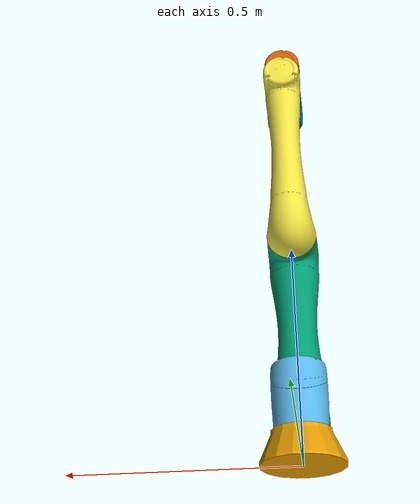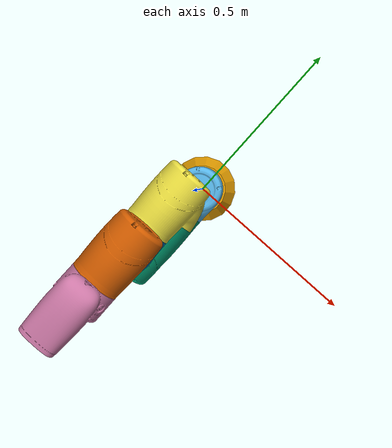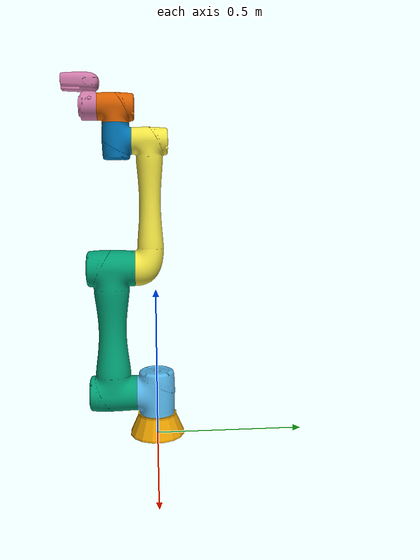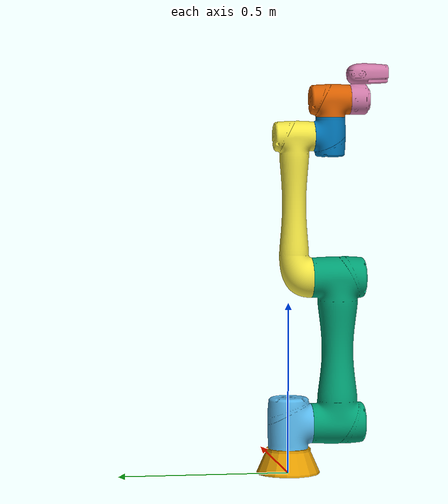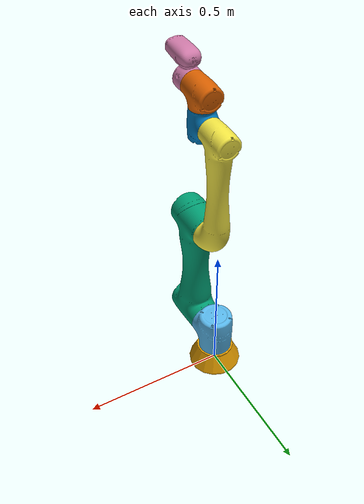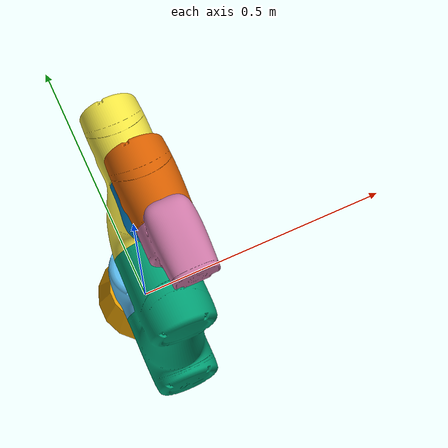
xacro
<?xml version="1.0"?>
<robot xmlns:xacro="http://wiki.ros.org/xacro" name="tm5-900">

  <xacro:arg name="ns" default="" />
  <xacro:arg name="prefix" default="" />

  <xacro:arg name="gripper" default="none" />

  <xacro:arg name="color" default="none" />

  <xacro:arg name="trans_hw_iface" default="hardware_interface/PositionJointInterface" />

  <xacro:include filename="$(find tmr_description)/xacro/macro.gazebo.xacro" />
  <xacro:include filename="$(find tmr_description)/xacro/macro.transmission.xacro" />
  <xacro:include filename="$(find tmr_description)/xacro/macro.materials.xacro" />

  <!-- tm5-900 -->
  <xacro:include filename="$(find tmr_description)/xacro/macro.tm5-900.urdf.xacro" />

  <xacro:tmr_gazebo ns="$(arg ns)" prefix="$(arg prefix)" />
  <xacro:tmr_transmission prefix="$(arg prefix)" hw_iface="$(arg trans_hw_iface)" />
  <xacro:tmr_materials/>

  <!-- Arm -->
  <xacro:property name="color" value="$(arg color)"/>
  <xacro:if value="${color == 'none'}">
    <xacro:tm5-900 ns="$(arg ns)" prefix="$(arg prefix)" />
  </xacro:if>
  <!-- Arm.color.stl -->
  <xacro:unless value="${color == 'none'}">
    <xacro:tm5-900 ns="$(arg ns)" prefix="$(arg prefix)" color="${color}" format="stl" />
  </xacro:unless>

  <!-- Arm + Gripper -->
  <xacro:property name="gripper" value="$(arg gripper)"/>
  <xacro:if value="${gripper == 'robotiq_2f'}">
    <xacro:include filename="$(find tmr_description)/xacro/gripper/robotiq_2f.urdf.xacro" />
    <xacro:robotiq_2f prefix="$(arg prefix)"/>
  </xacro:if>

</robot>

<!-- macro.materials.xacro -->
<robot xmlns:xacro="http://www.ros.org/wiki/xacro">
	<xacro:macro name="tmr_materials">
    <material name="grey">
			<color rgba="0.5 0.5 0.5 1.0" />
		</material>
		<material name="white">
			<color rgba="0.95 0.95 0.95 1.0" />
		</material>
		<material name="red">
			<color rgba="0.95 0.0 0.0 1.0" />
		</material>
		<material name="orange">
			<color rgba="1.0 0.5 0.0 1.0" />
		</material>
		<material name="yellow">
			<color rgba="1.0 1.0 0.0 1.0" />
		</material>
		<material name="green">
			<color rgba="0.0 1.0 0.0 1.0" />
		</material>
		<material name="blue">
			<color rgba="0.0 0.0 1.0 1.0" />
		</material>
		<material name="indigo">
			<color rgba="0.3 0.3 0.6 1.0" />
		</material>
		<material name="violet">
			<color rgba="0.6 0.0 1.0 1.0" />
		</material>
		<material name="black">
			<color rgba="0.0 0.0 0.0 1.0" />
		</material>
	</xacro:macro>
</robot>

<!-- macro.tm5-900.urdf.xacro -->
<robot xmlns:xacro="http://wiki.ros.org/xacro">

  <xacro:include filename="$(find tmr_description)/xacro/macro.inertial.xacro" />

  <xacro:macro name="tm5-900" params="ns prefix
    color:=none format:=obj">
    <xacro:property name="mass_0" value="1.0" />
    <xacro:property name="mass_1" value="4.5" />
    <xacro:property name="mass_2" value="11.0" />
    <xacro:property name="mass_3" value="2.5" />
    <xacro:property name="mass_4" value="1.45" />
    <xacro:property name="mass_5" value="1.45" />
    <xacro:property name="mass_6" value="0.4" />

<!--LinkDescription-->
  <link name="${prefix}link_0">
    <visual>
      <geometry>
        <mesh filename="package://tmr_description/meshes/tm5-900/visual/tm5_base.${format}" />
      </geometry>
      <material name="${color}" />
    </visual>
    <collision>
      <geometry>
        <mesh filename="package://tmr_description/meshes/tm5-900/collision/tm5_base_c.stl" />
      </geometry>
    </collision>
<!--inertial-->
    <xacro:cylinder_inertial_z radius="0.06" length="0.05" mass="${mass_0}">
      <origin xyz="0 0 0" rpy="0 0 0" />
    </xacro:cylinder_inertial_z>
  </link>

  <joint name="${prefix}joint_1" type="revolute">
    <parent link="${prefix}link_0" />
    <child link="${prefix}link_1" />
    <origin xyz="0 0 0.1452" rpy="0 0 0" />
    <axis xyz="0 0 1" />
<!--limit-->
    <limit lower="${-1.5*pi}" upper="${1.5*pi}" velocity="3.14" effort="320.0" />
  </joint>

  <link name="${prefix}link_1">
    <visual>
      <geometry>
        <mesh filename="package://tmr_description/meshes/tm5-900/visual/tmr_400w_01.${format}" />
      </geometry>
      <material name="${color}" />
    </visual>
    <collision>
      <geometry>
        <mesh filename="package://tmr_description/meshes/tm5-900/collision/tmr_400w_01_c.stl" />
      </geometry>
    </collision>
<!--inertial-->
    <xacro:cylinder_inertial_z radius="0.06" length="0.15" mass="${mass_1}">
      <origin xyz="0 0 0" rpy="0 0 0" />
    </xacro:cylinder_inertial_z>
  </link>

  <joint name="${prefix}joint_2" type="revolute">
    <parent link="${prefix}link_1" />
    <child link="${prefix}link_2" />
    <origin xyz="0 0 0" rpy="${-0.5*pi} ${-0.5*pi} 0" />
    <axis xyz="0 0 1" />
<!--limit-->
    <limit lower="${-pi}" upper="${pi}" velocity="3.14" effort="320" />
  </joint>

  <link name="${prefix}link_2">
    <visual>
      <geometry>
        <mesh filename="package://tmr_description/meshes/tm5-900/visual/tm5-900_arm1.${format}" />
      </geometry>
      <material name="${color}" />
    </visual>
    <collision>
      <geometry>
        <mesh filename="package://tmr_description/meshes/tm5-900/collision/tm5-900_arm1_c.stl" />
      </geometry>
    </collision>
<!--inertial-->
    <xacro:cylinder_inertial_x radius="0.06" length="0.429" mass="${mass_2}">
      <origin xyz="0.2145 0 -0.146" rpy="0 0 0" />
    </xacro:cylinder_inertial_x>
  </link>

  <joint name="${prefix}joint_3" type="revolute">
    <parent link="${prefix}link_2" />
    <child link="${prefix}link_3" />
    <origin  xyz="0.429 0 0" rpy="0 0 0" />
    <axis xyz="0 0 1" />
<!--limit-->
    <limit lower="${-pi}" upper="${pi}" velocity="3.14" effort="320" />
  </joint>

  <link name="${prefix}link_3">
    <visual>
      <geometry>
        <mesh filename="package://tmr_description/meshes/tm5-900/visual/tm5-900_arm2.${format}" />
      </geometry>
      <material name="${color}" />
    </visual>
    <collision>
      <geometry>
        <mesh filename="package://tmr_description/meshes/tm5-900/collision/tm5-900_arm2_c.stl" />
      </geometry>
    </collision>
<!--inertial-->
    <xacro:cylinder_inertial_x radius="0.045" length="0.4115" mass="${mass_3}">
      <origin xyz="0.20575 0 -0.0163" rpy="0 0 0" />
    </xacro:cylinder_inertial_x>
  </link>

  <joint name="${prefix}joint_4" type="revolute">
    <parent link="${prefix}link_3" />
    <child link="${prefix}link_4" />
    <origin xyz="0.4115 0 -0.1223" rpy="0 0 ${0.5*pi}" />
    <axis xyz="0 0 1" />
<!--limit-->
    <limit lower="${-pi}" upper="${pi}" velocity="3.92" effort="80" />
  </joint>

  <link name="${prefix}link_4">
    <visual>
      <geometry>
        <mesh filename="package://tmr_description/meshes/tm5-900/visual/tmr_100w_01.${format}" />
      </geometry>
      <material name="${color}" />
    </visual>
    <collision>
      <geometry>
        <mesh filename="package://tmr_description/meshes/tm5-900/collision/tmr_100w_01_c.stl" />
      </geometry>
    </collision>
<!--inertial-->
    <xacro:cylinder_inertial_y radius="0.045" length="0.12" mass="${mass_4}">
      <origin xyz="0 0 0" rpy="0 0 0" />
    </xacro:cylinder_inertial_y>
  </link>

  <joint name="${prefix}joint_5" type="revolute">
    <parent link="${prefix}link_4" />
    <child link="${prefix}link_5" />
    <origin xyz="0 -0.106 0" rpy="${0.5*pi} 0 0" />
    <axis xyz="0 0 1" />
<!--limit-->
    <limit lower="${-pi}" upper="${pi}" velocity="3.92" effort="80" />
  </joint>

  <link name="${prefix}link_5">
    <visual>
      <geometry>
        <mesh filename="package://tmr_description/meshes/tm5-900/visual/tmr_100w_02.${format}" />
      </geometry>
      <material name="${color}" />
    </visual>
    <collision>
      <geometry>
        <mesh filename="package://tmr_description/meshes/tm5-900/collision/tmr_100w_02_c.stl" />
      </geometry>
    </collision>
<!--inertial-->
    <xacro:cylinder_inertial_y radius="0.045" length="0.12" mass="${mass_5}">
      <origin xyz="0 0 0" rpy="0 0 0" />
    </xacro:cylinder_inertial_y>
  </link>

  <joint name="${prefix}joint_6" type="revolute">
    <parent link="${prefix}link_5" />
    <child link="${prefix}link_6" />
    <origin xyz="0 -0.11315 0" rpy="${0.5*pi} 0 0" />
    <axis xyz="0 0 1" />
<!--limit-->
    <limit lower="${-1.5*pi}" upper="${1.5*pi}" velocity="3.92" effort="80" />
  </joint>

  <link name="${prefix}link_6">
    <visual>
      <geometry>
        <mesh filename="package://tmr_description/meshes/tm5-900/visual/tmr_ee.${format}" />
      </geometry>
      <material name="${color}" />
    </visual>
    <collision>
      <geometry>
        <mesh filename="package://tmr_description/meshes/tm5-900/collision/tmr_ee_c.stl" />
      </geometry>
    </collision>
<!--inertial-->
    <xacro:cylinder_inertial_z radius="0.045" length="0.06" mass="${mass_6}">
      <origin xyz="0 0 0" rpy="0 0 0" />
    </xacro:cylinder_inertial_z>
  </link>

  <link name="${prefix}base" />
  <joint name="${prefix}base_fixed_joint" type="fixed">
    <parent link="${prefix}base" />
    <child link="${prefix}link_0" />
    <origin xyz="0 0 0" rpy="0 0 0" />
  </joint>

  <link name="${prefix}flange" />
  <joint name="${prefix}flange_fixed_joint" type="fixed">
    <parent link="${prefix}link_6" />
    <child link="${prefix}flange" />
    <origin xyz="0 0 0" rpy="0 0 0" />
  </joint>
<!--LinkDescription-->

  </xacro:macro>

</robot>

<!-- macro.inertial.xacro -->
<robot xmlns:xacro="http://wiki.ros.org/xacro">
  <xacro:macro name="cylinder_inertial_x" params="radius length mass *origin">
    <inertial>
      <mass value="${mass}" />
      <xacro:insert_block name="origin" />
      <inertia
        ixx="${0.5 * mass * radius * radius}" ixy="0.0" ixz="0.0"
        iyy="${0.0833333 * mass * (3 * radius * radius + length * length)}" iyz="0.0"
        izz="${0.0833333 * mass * (3 * radius * radius + length * length)}" />
    </inertial>
  </xacro:macro>
  <xacro:macro name="cylinder_inertial_y" params="radius length mass *origin">
    <inertial>
      <mass value="${mass}" />
      <xacro:insert_block name="origin" />
      <inertia
        ixx="${0.0833333 * mass * (3 * radius * radius + length * length)}" ixy="0.0" ixz="0.0"
        iyy="${0.5 * mass * radius * radius}" iyz="0.0"
        izz="${0.0833333 * mass * (3 * radius * radius + length * length)}" />
    </inertial>
  </xacro:macro>
  <xacro:macro name="cylinder_inertial_z" params="radius length mass *origin">
    <inertial>
      <mass value="${mass}" />
      <xacro:insert_block name="origin" />
      <inertia
        ixx="${0.0833333 * mass * (3 * radius * radius + length * length)}" ixy="0.0" ixz="0.0"
        iyy="${0.0833333 * mass * (3 * radius * radius + length * length)}" iyz="0.0"
        izz="${0.5 * mass * radius * radius}" />
    </inertial>
  </xacro:macro>
</robot>
